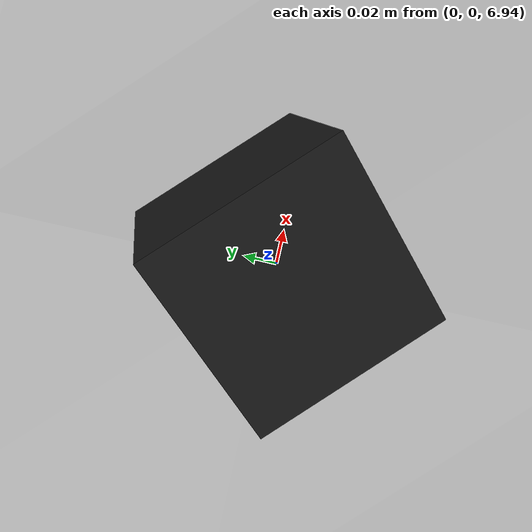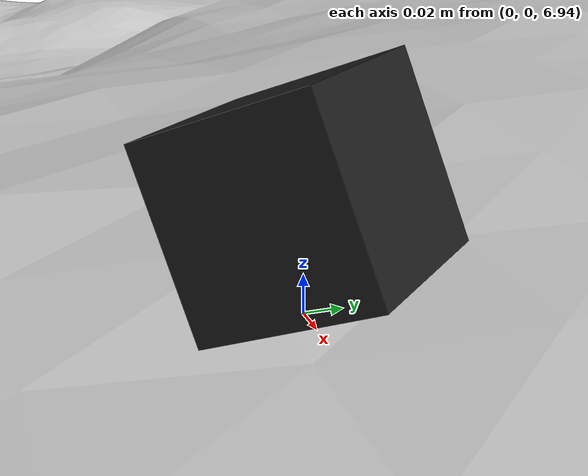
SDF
<?xml version="1.0" ?>
<sdf version='1.5'>
  <world name='default'>
    <light name='sun' type='directional'>
      <cast_shadows>1</cast_shadows>
      <pose frame=''>0 0 10 0 -0 0</pose>
      <diffuse>0.8 0.8 0.8 1</diffuse>
      <specular>0.2 0.2 0.2 1</specular>
      <attenuation>
        <range>1000</range>
        <constant>0.9</constant>
        <linear>0.01</linear>
        <quadratic>0.001</quadratic>
      </attenuation>
      <direction>-0.5 0.1 -0.9</direction>
    </light>
    <physics name='default_physics' default='0' type='ode'>
      <max_step_size>0.001</max_step_size>
      <real_time_factor>1</real_time_factor>
      <real_time_update_rate>1000</real_time_update_rate>
      <gravity>0 0 -9.8</gravity>
      <magnetic_field>6e-06 2.3e-05 -4.2e-05</magnetic_field>
    </physics>
    <scene>
      <ambient>0.2 0.5 0.5 1</ambient>
      <background>0.2 0.5 0.5 1</background>
      <shadows>1</shadows>
      <fog>
        <color>0.2 0.5 0.5 1</color>
        <type>linear</type>
        <start>1</start>
        <end>30</end>
        <density>0.1</density>
      </fog>
    </scene>
    <spherical_coordinates>
      <surface_model>EARTH_WGS84</surface_model>
      <latitude_deg>0</latitude_deg>
      <longitude_deg>0</longitude_deg>
      <elevation>0</elevation>
      <heading_deg>0</heading_deg>
    </spherical_coordinates>
    <gui fullscreen='0'>
      <camera name='user_camera'>
        <pose frame=''>57.9354 56.3682 5.55946 -0 0.371642 -2.36698</pose>
        <view_controller>orbit</view_controller>
        <projection_type>perspective</projection_type>
      </camera>
    </gui>
    <include>
      <name>terrain</name>
      <pose frame=''>0 0 0 0.0 0.0 0.0</pose>
      <uri>model://terreno_con_edge_con_onda_caustica</uri>
    </include>
    <include>
      <name>camera</name>
      <pose frame=''>0 0 7.0 0.0 1.2 0.79</pose>
      <uri>model://movable_camera</uri>
    </include>
  </world>
</sdf>

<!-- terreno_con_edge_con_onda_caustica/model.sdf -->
<sdf version="1.5">
    <model name='terreno_con_edge'>
      <pose frame=''>0 0 0 0 -0 0</pose>
      <static>1</static>
      <link name='link'>
        <collision name='collision'>
          <geometry>
            <mesh>
              <uri>model://assets/meshes/terreno_con_edge.dae</uri>
            </mesh>
          </geometry>
          <max_contacts>10</max_contacts>
          <surface>
            <contact>
              <ode/>
            </contact>
            <bounce/>
            <friction>
              <ode/>
            </friction>
          </surface>
        </collision>
        <visual name='visual'>
          <geometry>
            <mesh>
              <uri>model://assets/meshes/terreno_con_edge.dae</uri>
            </mesh>
          </geometry>
          <material>
            <script>
              <uri>model://assets/materials/scripts</uri>
              <uri>model://assets/materials/textures/sand</uri>
	      <uri>model://assets/materials/textures/terrain</uri>
	      <uri>model://assets/materials/textures/caustics</uri>
	      <uri>model://assets/materials/textures/rocks/3D_pattern_66/pattern_391</uri>
              <name>Underwater/Sand_And_Rocks_With_Caustics5</name>
            </script>
          </material>
        </visual>
        <self_collide>0</self_collide>
        <kinematic>0</kinematic>
        <gravity>0</gravity>
      </link>
    </model>
</sdf>

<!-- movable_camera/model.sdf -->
<sdf version="1.5">
    <model name='movable_camera'>
      <pose frame=''>0 0 5 0.0 1.20 0.0</pose>
      <link name='link'>
        <inertial>
          <mass>0.1</mass>
          <inertia>
            <ixx>0.000166667</ixx>
            <iyy>0.000166667</iyy>
            <izz>0.000166667</izz>
            <ixy>0</ixy>
            <ixz>0</ixz>
            <iyz>0</iyz>
          </inertia>
        </inertial>
        <collision name='collision'>
          <geometry>
            <box>
              <size>0.1 0.1 0.1</size>
            </box>
          </geometry>
          <max_contacts>10</max_contacts>
          <surface>
            <contact>
              <ode/>
            </contact>
            <bounce/>
            <friction>
              <ode/>
            </friction>
          </surface>
        </collision>
        <visual name='visual'>
          <geometry>
            <box>
              <size>0.1 0.1 0.1</size>
            </box>
          </geometry>
          <material>
            <script>
              <name>Gazebo/Black</name>
            </script>
          </material>
        </visual>
        <sensor name='camera1' type='camera'>
          <camera name='__default__'>
            <horizontal_fov>2.0943</horizontal_fov>
            <image>
              <width>320</width>
	      <!-->seria 180, pero a lsd_slam no le gusta que no sea multiplo de 16, porque sea?<-->
              <height>240</height>
            </image>
            <clip>
              <near>0.1</near>
              <far>100</far>
            </clip>
            <save enabled='false'>
              <path>/home/emanuel/Descargas</path>
            </save>
          </camera>
          <always_on>1</always_on>
	  <!-- update rate no tiene que estar, jode con la
          visualizacion en la camara de la onda caustica-->
          <visualize>true</visualize>
          <plugin name='camera_controller' filename='libgazebo_ros_camera.so'>
            <alwaysOn>true</alwaysOn>
            <updateRate>30.0</updateRate>
            <cameraName>movable_camera</cameraName>
            <imageTopicName>image_raw</imageTopicName>
            <cameraInfoTopicName>camera_info</cameraInfoTopicName>
            <frameName>camera</frameName>
            <hackBaseline>0.07</hackBaseline>
            <distortionK1>0.0</distortionK1>
            <distortionK2>0.0</distortionK2>
            <distortionK3>0.0</distortionK3>
            <distortionT1>0.0</distortionT1>
            <distortionT2>0.0</distortionT2>
          </plugin>
        </sensor>
        <self_collide>0</self_collide>
        <kinematic>0</kinematic>
        <gravity>0</gravity>
      </link>
      <plugin name='object_controller' filename='libgazebo_ros_planar_move.so'>
        <commandTopic>movable_camera/cmd_vel</commandTopic>
        <odometryTopic>movable_camera/odom</odometryTopic>
        <odometryFrame>odom</odometryFrame>
        <odometryRate>20.0</odometryRate>
        <robotBaseFrame>link</robotBaseFrame>
      </plugin>
    </model>
</sdf>
